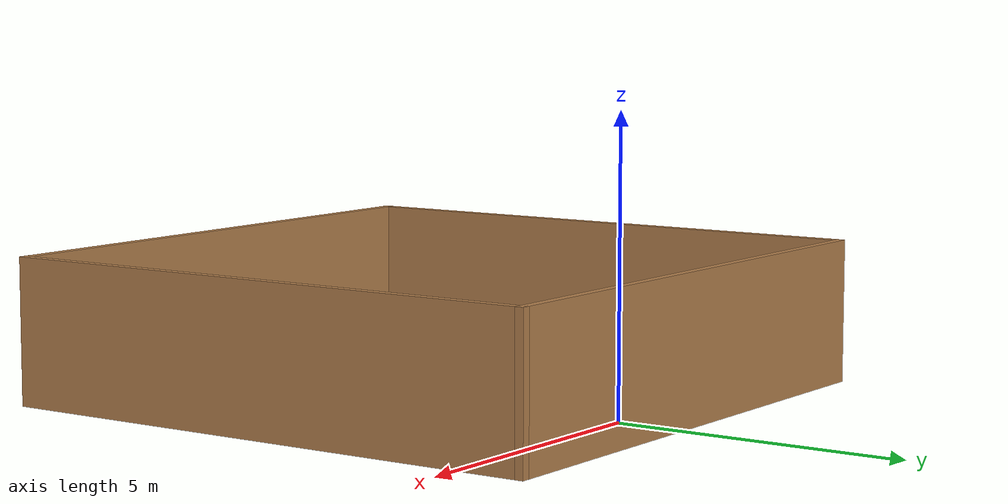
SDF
<?xml version='1.0'?>
<sdf version='1.7'>
  <model name='room'>
    <pose>-0.518629 -3.82477 0 0 -0 0</pose>
    <link name='Wall_0'>
      <collision name='Wall_0_Collision'>
        <geometry>
          <box>
            <size>10 0.15 2.5</size>
          </box>
        </geometry>
        <pose>0 0 1.25 0 -0 0</pose>
      </collision>
      <visual name='Wall_0_Visual'>
        <pose>0 0 1.25 0 -0 0</pose>
        <geometry>
          <box>
            <size>10 0.15 2.5</size>
          </box>
        </geometry>
        <material>
          <script>
            <uri>file://media/materials/scripts/gazebo.material</uri>
            <name>Gazebo/Wood</name>
          </script>
          <ambient>1 1 1 1</ambient>
        </material>
        <meta>
          <layer>0</layer>
        </meta>
      </visual>
      <pose>0 -4.925 0 0 -0 0</pose>
    </link>
    <link name='Wall_2'>
      <collision name='Wall_2_Collision'>
        <geometry>
          <box>
            <size>10 0.15 2.5</size>
          </box>
        </geometry>
        <pose>0 0 1.25 0 -0 0</pose>
      </collision>
      <visual name='Wall_2_Visual'>
        <pose>0 0 1.25 0 -0 0</pose>
        <geometry>
          <box>
            <size>10 0.15 2.5</size>
          </box>
        </geometry>
        <material>
          <script>
            <uri>file://media/materials/scripts/gazebo.material</uri>
            <name>Gazebo/Wood</name>
          </script>
          <ambient>1 1 1 1</ambient>
        </material>
        <meta>
          <layer>0</layer>
        </meta>
      </visual>
      <pose>4.925 0 0 0 -0 1.5708</pose>
    </link>
    <link name='Wall_4'>
      <collision name='Wall_4_Collision'>
        <geometry>
          <box>
            <size>10 0.15 2.5</size>
          </box>
        </geometry>
        <pose>0 0 1.25 0 -0 0</pose>
      </collision>
      <visual name='Wall_4_Visual'>
        <pose>0 0 1.25 0 -0 0</pose>
        <geometry>
          <box>
            <size>10 0.15 2.5</size>
          </box>
        </geometry>
        <material>
          <script>
            <uri>file://media/materials/scripts/gazebo.material</uri>
            <name>Gazebo/Wood</name>
          </script>
          <ambient>1 1 1 1</ambient>
        </material>
        <meta>
          <layer>0</layer>
        </meta>
      </visual>
      <pose>0 4.925 0 0 -0 3.14159</pose>
    </link>
    <link name='Wall_5'>
      <collision name='Wall_5_Collision'>
        <geometry>
          <box>
            <size>10 0.15 2.5</size>
          </box>
        </geometry>
        <pose>0 0 1.25 0 -0 0</pose>
      </collision>
      <visual name='Wall_5_Visual'>
        <pose>0 0 1.25 0 -0 0</pose>
        <geometry>
          <box>
            <size>10 0.15 2.5</size>
          </box>
        </geometry>
        <material>
          <script>
            <uri>file://media/materials/scripts/gazebo.material</uri>
            <name>Gazebo/Wood</name>
          </script>
          <ambient>1 1 1 1</ambient>
        </material>
        <meta>
          <layer>0</layer>
        </meta>
      </visual>
      <pose>-4.925 0 0 0 -0 -1.5708</pose>
    </link>
    <static>1</static>
  </model>
</sdf>
